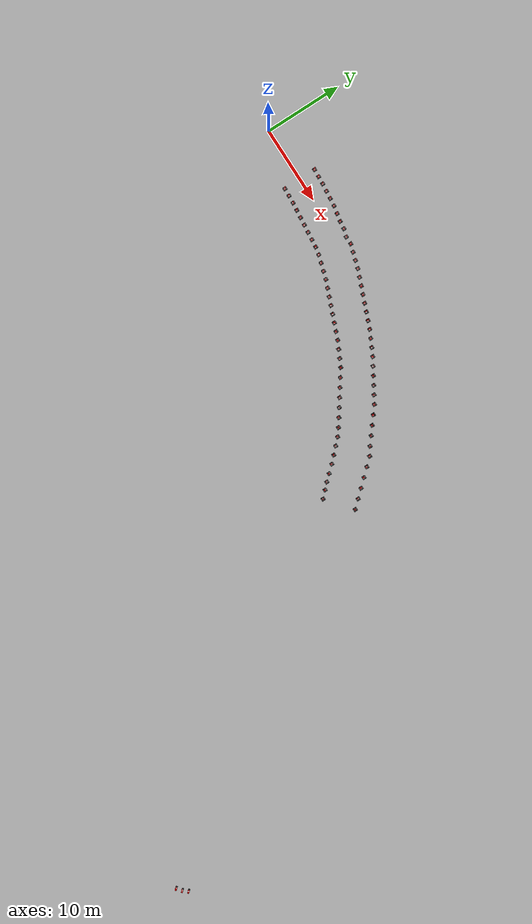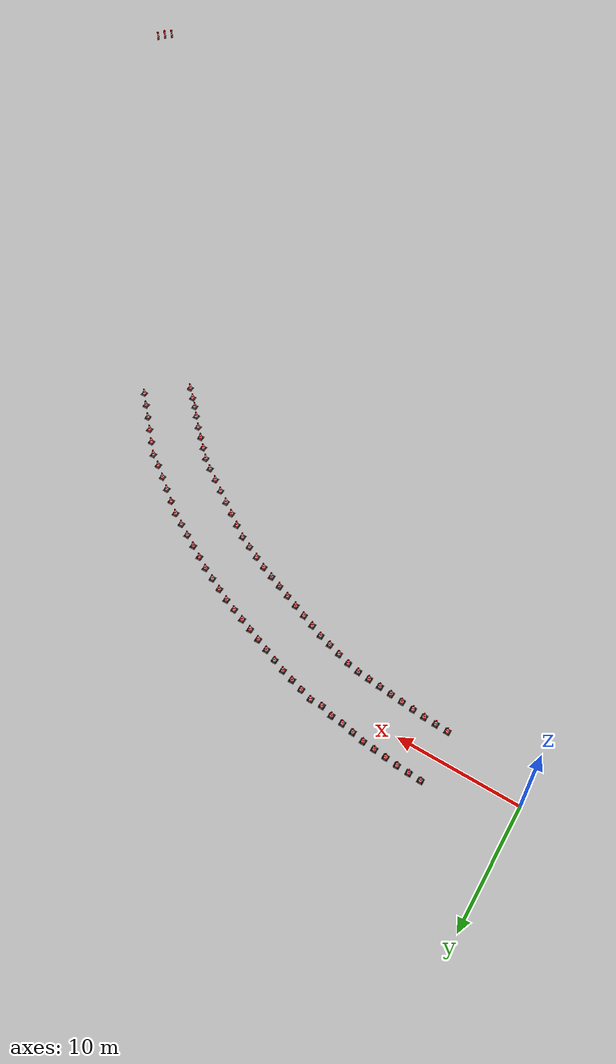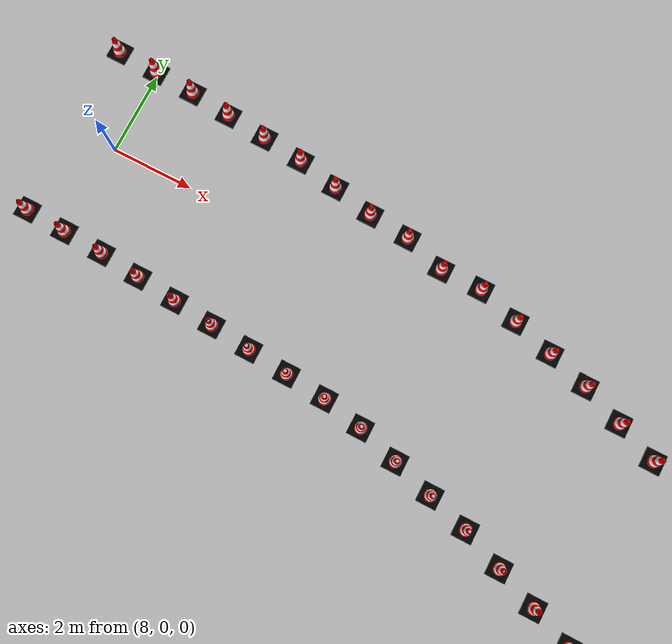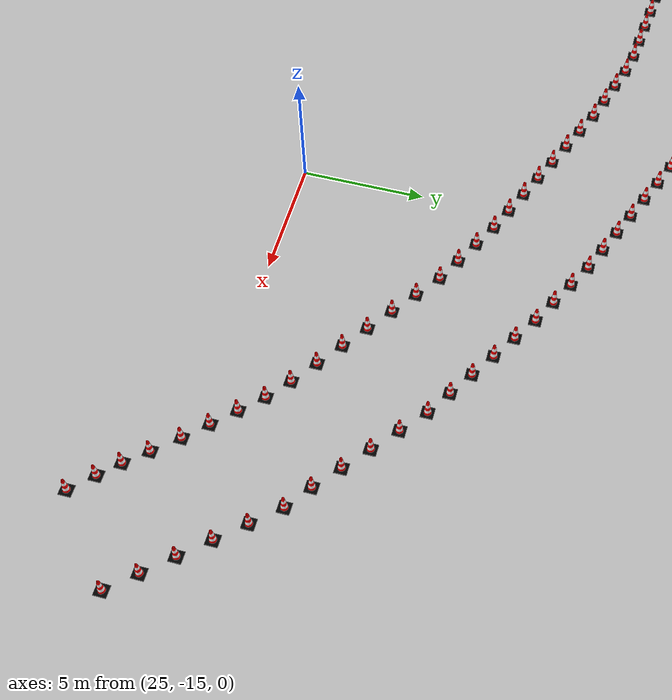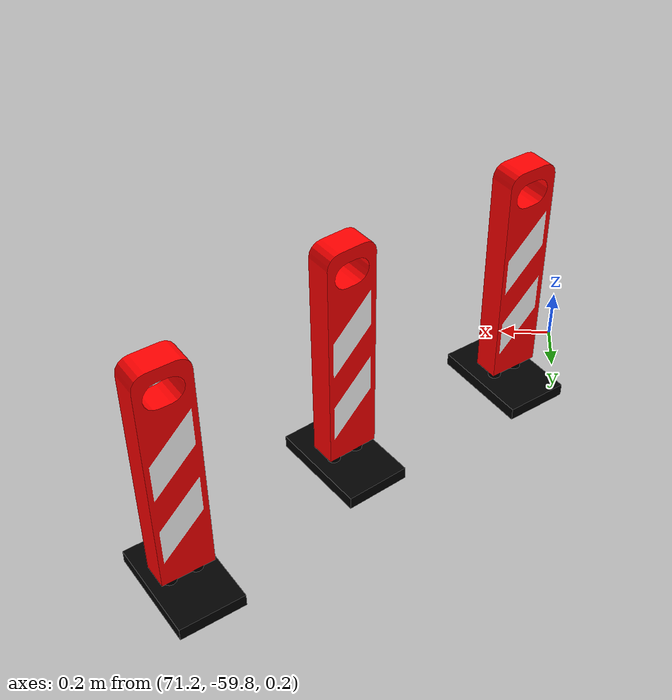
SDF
<sdf version="1.6">
 <world name="default">
  <include><uri>model://sun</uri></include>
  <include>
   <static>true</static>
   <pose>-133.620346 -285.350403 0.1 0 -0 2.265650</pose>
   <uri>model://race_track</uri>
  </include>
  <include>
   <name>Traffic_Cone_75cm_007</name>
   <static>true</static>
   <pose>7 2.10 0.2 0 -0 0</pose>
   <uri>model://traffic_cone_75cm_001</uri>
  </include>
  <include>
   <name>Traffic_Cone_75cm_008</name>
   <static>true</static>
   <pose>8 2.05 0.2 0 -0 0</pose>
   <uri>model://traffic_cone_75cm_001</uri>
  </include>
  <include>
   <name>Traffic_Cone_75cm_009</name>
   <static>true</static>
   <pose>9 2.00 0.2 0 -0 0</pose>
   <uri>model://traffic_cone_75cm_001</uri>
  </include>
  <include>
   <name>Traffic_Cone_75cm_010</name>
   <static>true</static>
   <pose>10 1.90 0.2 0 -0 0</pose>
   <uri>model://traffic_cone_75cm_001</uri>
  </include>
  <include>
   <name>Traffic_Cone_75cm_011</name>
   <static>true</static>
   <pose>11 1.80 0.2 0 -0 0</pose>
   <uri>model://traffic_cone_75cm_001</uri>
  </include>
  <include>
   <name>Traffic_Cone_75cm_012</name>
   <static>true</static>
   <pose>12 1.70 0.2 0 -0 0</pose>
   <uri>model://traffic_cone_75cm_001</uri>
  </include>
  <include>
   <name>Traffic_Cone_75cm_013</name>
   <static>true</static>
   <pose>13 1.50 0.2 0 -0 0</pose>
   <uri>model://traffic_cone_75cm_001</uri>
  </include>
  <include>
   <name>Traffic_Cone_75cm_014</name>
   <static>true</static>
   <pose>14 1.30 0.2 0 -0 0</pose>
   <uri>model://traffic_cone_75cm_001</uri>
  </include>
  <include>
   <name>Traffic_Cone_75cm_015</name>
   <static>true</static>
   <pose>15 1.20 0.2 0 -0 0</pose>
   <uri>model://traffic_cone_75cm_001</uri>
  </include>
  <include>
   <name>Traffic_Cone_75cm_016</name>
   <static>true</static>
   <pose>16 0.90 0.2 0 -0 0</pose>
   <uri>model://traffic_cone_75cm_001</uri>
  </include>
  <include>
   <name>Traffic_Cone_75cm_017</name>
   <static>true</static>
   <pose>17 0.90 0.2 0 -0 0</pose>
   <uri>model://traffic_cone_75cm_001</uri>
  </include>
  <include>
   <name>Traffic_Cone_75cm_018</name>
   <static>true</static>
   <pose>18 0.60 0.2 0 -0 0</pose>
   <uri>model://traffic_cone_75cm_001</uri>
  </include>
  <include>
   <name>Traffic_Cone_75cm_019</name>
   <static>true</static>
   <pose>19 0.30 0.2 0 -0 0</pose>
   <uri>model://traffic_cone_75cm_001</uri>
  </include>
  <include>
   <name>Traffic_Cone_75cm_020</name>
   <static>true</static>
   <pose>20 0.00 0.2 0 -0 0</pose>
   <uri>model://traffic_cone_75cm_001</uri>
  </include>
  <include>
   <name>Traffic_Cone_75cm_021</name>
   <static>true</static>
   <pose>21 -0.40 0.2 0 -0 0</pose>
   <uri>model://traffic_cone_75cm_001</uri>
  </include>
  <include>
   <name>Traffic_Cone_75cm_022</name>
   <static>true</static>
   <pose>22 -0.80 0.2 0 -0 0</pose>
   <uri>model://traffic_cone_75cm_001</uri>
  </include>
  <include>
   <name>Traffic_Cone_75cm_023</name>
   <static>true</static>
   <pose>23 -1.20 0.2 0 -0 0</pose>
   <uri>model://traffic_cone_75cm_001</uri>
  </include>
  <include>
   <name>Traffic_Cone_75cm_024</name>
   <static>true</static>
   <pose>24 -1.60 0.2 0 -0 0</pose>
   <uri>model://traffic_cone_75cm_001</uri>
  </include>
  <include>
   <name>Traffic_Cone_75cm_025</name>
   <static>true</static>
   <pose>25 -2.00 0.2 0 -0 0</pose>
   <uri>model://traffic_cone_75cm_001</uri>
  </include>
  <include>
   <name>Traffic_Cone_75cm_026</name>
   <static>true</static>
   <pose>26 -2.40 0.2 0 -0 0</pose>
   <uri>model://traffic_cone_75cm_001</uri>
  </include>
  <include>
   <name>Traffic_Cone_75cm_027</name>
   <static>true</static>
   <pose>27 -2.80 0.2 0 -0 0</pose>
   <uri>model://traffic_cone_75cm_001</uri>
  </include>
  <include>
   <name>Traffic_Cone_75cm_028</name>
   <static>true</static>
   <pose>28 -3.30 0.2 0 -0 0</pose>
   <uri>model://traffic_cone_75cm_001</uri>
  </include>
  <include>
   <name>Traffic_Cone_75cm_029</name>
   <static>true</static>
   <pose>29 -3.80 0.2 0 -0 0</pose>
   <uri>model://traffic_cone_75cm_001</uri>
  </include>
  <include>
   <name>Traffic_Cone_75cm_030</name>
   <static>true</static>
   <pose>30 -4.30 0.2 0 -0 0</pose>
   <uri>model://traffic_cone_75cm_001</uri>
  </include>
  <include>
   <name>Traffic_Cone_75cm_031</name>
   <static>true</static>
   <pose>31 -4.90 0.2 0 -0 0</pose>
   <uri>model://traffic_cone_75cm_001</uri>
  </include>
  <include>
   <name>Traffic_Cone_75cm_032</name>
   <static>true</static>
   <pose>32 -5.50 0.2 0 -0 0</pose>
   <uri>model://traffic_cone_75cm_001</uri>
  </include>
  <include>
   <name>Traffic_Cone_75cm_033</name>
   <static>true</static>
   <pose>33 -6.10 0.2 0 -0 0</pose>
   <uri>model://traffic_cone_75cm_001</uri>
  </include>
  <include>
   <name>Traffic_Cone_75cm_034</name>
   <static>true</static>
   <pose>34 -6.70 0.2 0 -0 0</pose>
   <uri>model://traffic_cone_75cm_001</uri>
  </include>
  <include>
   <name>Traffic_Cone_75cm_035</name>
   <static>true</static>
   <pose>35 -7.30 0.2 0 -0 0</pose>
   <uri>model://traffic_cone_75cm_001</uri>
  </include>
  <include>
   <name>Traffic_Cone_75cm_036</name>
   <static>true</static>
   <pose>36 -8.10 0.2 0 -0 0</pose>
   <uri>model://traffic_cone_75cm_001</uri>
  </include>
  <include>
   <name>Traffic_Cone_75cm_037</name>
   <static>true</static>
   <pose>37 -8.90 0.2 0 -0 0</pose>
   <uri>model://traffic_cone_75cm_001</uri>
  </include>
  <include>
   <name>Traffic_Cone_75cm_038</name>
   <static>true</static>
   <pose>38 -9.70 0.2 0 -0 0</pose>
   <uri>model://traffic_cone_75cm_001</uri>
  </include>
  <include>
   <name>Traffic_Cone_75cm_039</name>
   <static>true</static>
   <pose>39 -10.50 0.2 0 -0 0</pose>
   <uri>model://traffic_cone_75cm_001</uri>
  </include>
  <include>
   <name>Traffic_Cone_75cm_040</name>
   <static>true</static>
   <pose>40 -11.20 0.2 0 -0 0</pose>
   <uri>model://traffic_cone_75cm_001</uri>
  </include>
  <include>
   <name>Traffic_Cone_75cm_041</name>
   <static>true</static>
   <pose>40.9 -12.20 0.2 0 -0 0</pose>
   <uri>model://traffic_cone_75cm_001</uri>
  </include>
  <include>
   <name>Traffic_Cone_75cm_042</name>
   <static>true</static>
   <pose>41.8 -13.20 0.2 0 -0 0</pose>
   <uri>model://traffic_cone_75cm_001</uri>
  </include>
  <include>
   <name>Traffic_Cone_75cm_043</name>
   <static>true</static>
   <pose>42.7 -14.20 0.2 0 -0 0</pose>
   <uri>model://traffic_cone_75cm_001</uri>
  </include>
  <include>
   <name>Traffic_Cone_75cm_044</name>
   <static>true</static>
   <pose>43.6 -15.20 0.2 0 -0 0</pose>
   <uri>model://traffic_cone_75cm_001</uri>
  </include>
  <include>
   <name>Traffic_Cone_75cm_045</name>
   <static>true</static>
   <pose>44.5 -16.20 0.2 0 -0 0</pose>
   <uri>model://traffic_cone_75cm_001</uri>
  </include>
  <include>
   <name>Traffic_Cone_75cm_107</name>
   <static>true</static>
   <pose>7 -2.20 0.2 0 -0 0</pose>
   <uri>model://traffic_cone_75cm_001</uri>
  </include>
  <include>
   <name>Traffic_Cone_75cm_108</name>
   <static>true</static>
   <pose>8 -2.25 0.2 0 -0 0</pose>
   <uri>model://traffic_cone_75cm_001</uri>
  </include>
  <include>
   <name>Traffic_Cone_75cm_109</name>
   <static>true</static>
   <pose>9 -2.30 0.2 0 -0 0</pose>
   <uri>model://traffic_cone_75cm_001</uri>
  </include>
  <include>
   <name>Traffic_Cone_75cm_110</name>
   <static>true</static>
   <pose>10 -2.40 0.2 0 -0 0</pose>
   <uri>model://traffic_cone_75cm_001</uri>
  </include>
  <include>
   <name>Traffic_Cone_75cm_111</name>
   <static>true</static>
   <pose>11 -2.50 0.2 0 -0 0</pose>
   <uri>model://traffic_cone_75cm_001</uri>
  </include>
  <include>
   <name>Traffic_Cone_75cm_112</name>
   <static>true</static>
   <pose>12 -2.60 0.2 0 -0 0</pose>
   <uri>model://traffic_cone_75cm_001</uri>
  </include>
  <include>
   <name>Traffic_Cone_75cm_113</name>
   <static>true</static>
   <pose>13 -2.70 0.2 0 -0 0</pose>
   <uri>model://traffic_cone_75cm_001</uri>
  </include>
  <include>
   <name>Traffic_Cone_75cm_114</name>
   <static>true</static>
   <pose>14 -2.80 0.2 0 -0 0</pose>
   <uri>model://traffic_cone_75cm_001</uri>
  </include>
  <include>
   <name>Traffic_Cone_75cm_115</name>
   <static>true</static>
   <pose>15 -2.90 0.2 0 -0 0</pose>
   <uri>model://traffic_cone_75cm_001</uri>
  </include>
  <include>
   <name>Traffic_Cone_75cm_116</name>
   <static>true</static>
   <pose>16 -3.10 0.2 0 -0 0</pose>
   <uri>model://traffic_cone_75cm_001</uri>
  </include>
  <include>
   <name>Traffic_Cone_75cm_117</name>
   <static>true</static>
   <pose>17 -3.40 0.2 0 -0 0</pose>
   <uri>model://traffic_cone_75cm_001</uri>
  </include>
  <include>
   <name>Traffic_Cone_75cm_118</name>
   <static>true</static>
   <pose>18 -3.70 0.2 0 -0 0</pose>
   <uri>model://traffic_cone_75cm_001</uri>
  </include>
  <include>
   <name>Traffic_Cone_75cm_119</name>
   <static>true</static>
   <pose>19 -4.00 0.2 0 -0 0</pose>
   <uri>model://traffic_cone_75cm_001</uri>
  </include>
  <include>
   <name>Traffic_Cone_75cm_120</name>
   <static>true</static>
   <pose>20 -4.40 0.2 0 -0 0</pose>
   <uri>model://traffic_cone_75cm_001</uri>
  </include>
  <include>
   <name>Traffic_Cone_75cm_121</name>
   <static>true</static>
   <pose>21 -4.80 0.2 0 -0 0</pose>
   <uri>model://traffic_cone_75cm_001</uri>
  </include>
  <include>
   <name>Traffic_Cone_75cm_122</name>
   <static>true</static>
   <pose>22 -5.20 0.2 0 -0 0</pose>
   <uri>model://traffic_cone_75cm_001</uri>
  </include>
  <include>
   <name>Traffic_Cone_75cm_123</name>
   <static>true</static>
   <pose>23 -5.60 0.2 0 -0 0</pose>
   <uri>model://traffic_cone_75cm_001</uri>
  </include>
  <include>
   <name>Traffic_Cone_75cm_124</name>
   <static>true</static>
   <pose>24 -6.00 0.2 0 -0 0</pose>
   <uri>model://traffic_cone_75cm_001</uri>
  </include>
  <include>
   <name>Traffic_Cone_75cm_125</name>
   <static>true</static>
   <pose>25 -6.40 0.2 0 -0 0</pose>
   <uri>model://traffic_cone_75cm_001</uri>
  </include>
  <include>
   <name>Traffic_Cone_75cm_126</name>
   <static>true</static>
   <pose>26 -6.80 0.2 0 -0 0</pose>
   <uri>model://traffic_cone_75cm_001</uri>
  </include>
  <include>
   <name>Traffic_Cone_75cm_128</name>
   <static>true</static>
   <pose>27 -7.30 0.2 0 -0 0</pose>
   <uri>model://traffic_cone_75cm_001</uri>
  </include>
  <include>
   <name>Traffic_Cone_75cm_129</name>
   <static>true</static>
   <pose>28 -7.80 0.2 0 -0 0</pose>
   <uri>model://traffic_cone_75cm_001</uri>
  </include>
  <include>
   <name>Traffic_Cone_75cm_130</name>
   <static>true</static>
   <pose>29 -8.30 0.2 0 -0 0</pose>
   <uri>model://traffic_cone_75cm_001</uri>
  </include>
  <include>
   <name>Traffic_Cone_75cm_131</name>
   <static>true</static>
   <pose>30 -9.00 0.2 0 -0 0</pose>
   <uri>model://traffic_cone_75cm_001</uri>
  </include>
  <include>
   <name>Traffic_Cone_75cm_132</name>
   <static>true</static>
   <pose>31 -9.70 0.2 0 -0 0</pose>
   <uri>model://traffic_cone_75cm_001</uri>
  </include>
  <include>
   <name>Traffic_Cone_75cm_133</name>
   <static>true</static>
   <pose>32 -10.40 0.2 0 -0 0</pose>
   <uri>model://traffic_cone_75cm_001</uri>
  </include>
  <include>
   <name>Traffic_Cone_75cm_134</name>
   <static>true</static>
   <pose>33 -11.10 0.2 0 -0 0</pose>
   <uri>model://traffic_cone_75cm_001</uri>
  </include>
  <include>
   <name>Traffic_Cone_75cm_135</name>
   <static>true</static>
   <pose>34 -11.80 0.2 0 -0 0</pose>
   <uri>model://traffic_cone_75cm_001</uri>
  </include>
  <include>
   <name>Traffic_Cone_75cm_136</name>
   <static>true</static>
   <pose>35 -12.50 0.2 0 -0 0</pose>
   <uri>model://traffic_cone_75cm_001</uri>
  </include>
  <include>
   <name>Traffic_Cone_75cm_137</name>
   <static>true</static>
   <pose>35.9 -13.20 0.2 0 -0 0</pose>
   <uri>model://traffic_cone_75cm_001</uri>
  </include>
  <include>
   <name>Traffic_Cone_75cm_138</name>
   <static>true</static>
   <pose>36.7 -14.00 0.2 0 -0 0</pose>
   <uri>model://traffic_cone_75cm_001</uri>
  </include>
  <include>
   <name>Traffic_Cone_75cm_139</name>
   <static>true</static>
   <pose>37.5 -14.80 0.2 0 -0 0</pose>
   <uri>model://traffic_cone_75cm_001</uri>
  </include>
  <include>
   <name>Traffic_Cone_75cm_140</name>
   <static>true</static>
   <pose>38.3 -15.60 0.2 0 -0 0</pose>
   <uri>model://traffic_cone_75cm_001</uri>
  </include>
  <include>
   <name>Traffic_Cone_75cm_141</name>
   <static>true</static>
   <pose>39.1 -16.50 0.2 0 -0 0</pose>
   <uri>model://traffic_cone_75cm_001</uri>
  </include>
  <include>
   <name>Traffic_Cone_75cm_142</name>
   <static>true</static>
   <pose>39.8 -17.30 0.2 0 -0 0</pose>
   <uri>model://traffic_cone_75cm_001</uri>
  </include>
  <include>
   <name>Traffic_Cone_75cm_143</name>
   <static>true</static>
   <pose>40.5 -18.00 0.2 0 -0 0</pose>
   <uri>model://traffic_cone_75cm_001</uri>
  </include>
  <include>
   <name>Traffic_Cone_75cm_144</name>
   <static>true</static>
   <pose>41.3 -18.80 0.2 0 -0 0</pose>
   <uri>model://traffic_cone_75cm_001</uri>
  </include>
  <include>
   <name>Traffic_Cone_100cm_001</name>
   <static>true</static>
   <pose>72.5 -58.4 0.2 0 0 -0.904326</pose>
   <uri>model://traffic_cone_100cm_001</uri>
  </include>
  <include>
   <name>Traffic_Cone_100cm_002</name>
   <static>true</static>
   <pose>71.4 -59.5 0.2 0 0 -0.900239</pose>
   <uri>model://traffic_cone_100cm_001</uri>
  </include>
  <include>
   <name>Traffic_Cone_100cm_003</name>
   <static>true</static>
   <pose>72 -59.0 0.2 0 -0 -0.852161</pose>
   <uri>model://traffic_cone_100cm_001</uri>
  </include>
 </world>
</sdf>

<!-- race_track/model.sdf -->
<sdf version="1.4">
  <model name="race_track">
    <static>true</static>
    <link name="link">

      <collision name="collision">
        <geometry>
          <box>
            <size>530 830 0.2</size>
          </box>
        </geometry>
      </collision>

      <visual name="visual">
        <pose>0 0 0 0 0 0</pose>
        <cast_shadows>false</cast_shadows>
        <geometry>
          <box>
            <size>530 830 0.2</size>
          </box>
        </geometry>
        <material>
          <script>
            <uri>model://race_track/materials/scripts</uri>
            <uri>model://race_track/materials/textures</uri>
            <name>vrc/race_track</name>
          </script>
        </material>
      </visual>

    </link>
  </model>
</sdf>

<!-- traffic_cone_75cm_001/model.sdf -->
<sdf version="1.5">
	<model name="traffic_cone_75cm_001">
		<static>true</static>
		<link name="link">

		<collision name="collision">
			<pose>0 0 0.375 0 0 0</pose>
			<geometry>
				<cylinder>
					<radius>0.240</radius>
					<length>0.750</length>
				</cylinder>
			</geometry>
		</collision>

		<visual name="visual">
			<pose>0 0 0 1.5707 0 0</pose>
			<geometry>
				<mesh>
					<uri>model://traffic_cone_75cm_001/meshes/Traffic_Cone_75cm.dae</uri>
				</mesh>
			</geometry>
		</visual>

	</link>
	</model>
</sdf>

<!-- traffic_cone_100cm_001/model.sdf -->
<sdf version="1.5">
	<model name="traffic_cone_100cm_001">
		<static>true</static>
		<link name="link">

		<collision name="collision">
			<pose>0 0 0.5 1.5707 0 0</pose>
			<geometry>
				<box>
					<size>0.400 1 0.250</size>
				</box>
			</geometry>
		</collision>

		<visual name="visual">
			<pose>0 0 0 1.5707 0 0</pose>
			<geometry>
				<mesh>
					<uri>model://traffic_cone_100cm_001/meshes/Traffic_Cone_100cm.DAE</uri>
				</mesh>
			</geometry>
		</visual>

	</link>
	</model>
</sdf>
